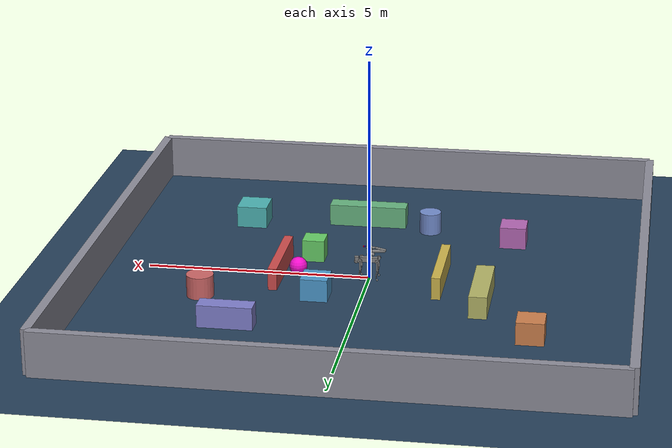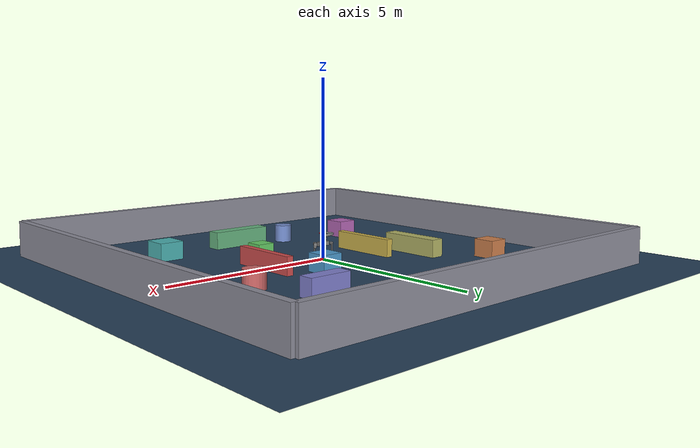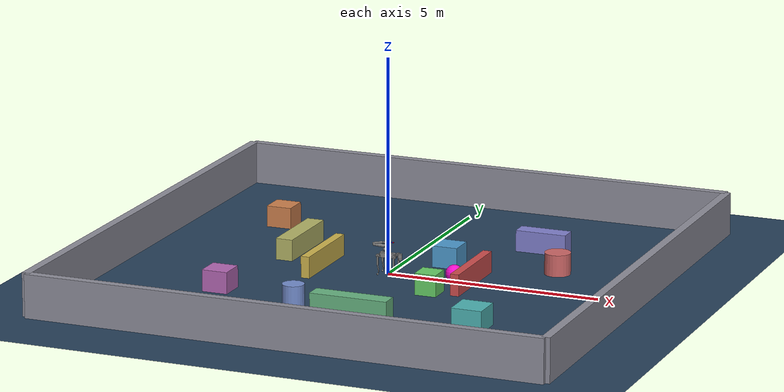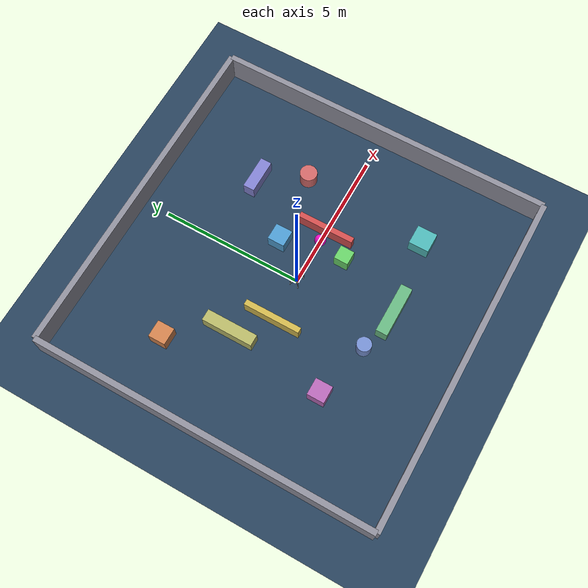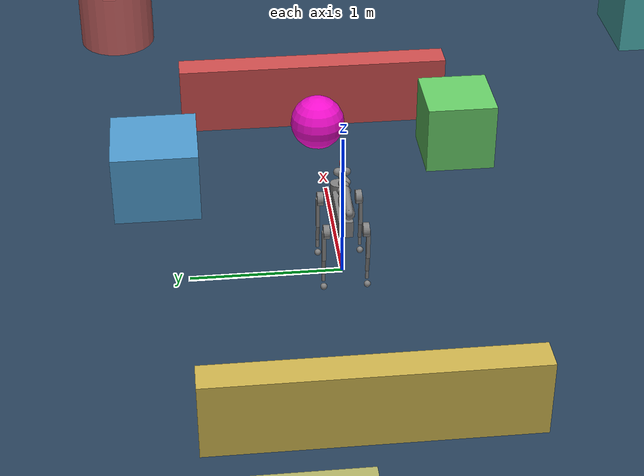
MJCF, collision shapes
<mujoco model="go2_piper_control">
  <compiler angle="radian" meshdir="assets/" texturedir="assets/"/>

  <option impratio="100" cone="elliptic"/>

  <size nkey="1"/>

  <visual>
    <global azimuth="-130" elevation="-20"/>
    <headlight ambient="0.3 0.3 0.3" diffuse="0.6 0.6 0.6" specular="0 0 0"/>
    <rgba haze="0.15 0.25 0.35 1"/>
  </visual>

  <statistic extent="0.8" center="0 0 0.1"/>

  <default>
    <default class="go2">
      <joint armature="0.01" damping="2" frictionloss="0.2"/>
      <geom condim="1" friction="0.6" margin="0.001"/>
      <general ctrlrange="-23.7 23.7"/>
      <default class="abduction">
        <joint range="-1.0472 1.0472"/>
      </default>
      <default class="hip">
        <default class="front_hip">
          <joint range="-1.5708 3.4907"/>
        </default>
        <default class="back_hip">
          <joint range="-0.5236 4.5379"/>
        </default>
      </default>
      <default class="knee">
        <joint range="-2.7227 -0.83776"/>
        <general ctrlrange="-45.43 45.43"/>
      </default>
      <default class="visual">
        <geom type="mesh" contype="0" conaffinity="0" group="2"/>
      </default>
      <default class="collision">
        <geom group="3"/>
        <default class="foot">
          <geom size="0.022 0 0" condim="6" priority="1" friction="0.8 0.02 0.01" solimp="0.015 1 0.022"/>
        </default>
      </default>
    </default>
    <default class="piper_main">
      <default class="piper_piper">
        <joint armature="0.005" frictionloss="0.3"/>
        <general forcerange="-100 100" biastype="affine" biasprm="0 -1"/>
        <default class="piper_finger">
          <joint type="slide" frictionloss="0"/>
          <general forcerange="-10 10"/>
        </default>
        <default class="piper_visual">
          <geom type="mesh" contype="0" conaffinity="0" group="2" density="0"/>
        </default>
        <default class="piper_collision">
          <geom type="capsule" group="3"/>
        </default>
      </default>
    </default>
  </default>

  <asset>
    <texture type="skybox" colorspace="auto" builtin="gradient" rgb1="0.3 0.5 0.7" rgb2="0 0 0" width="512" height="3072"/>
    <texture type="2d" colorspace="auto" name="groundplane" builtin="checker" mark="edge" rgb1="0.2 0.3 0.4" rgb2="0.1 0.2 0.3" markrgb="0.8 0.8 0.8" width="300" height="300"/>
    <texture type="2d" colorspace="linear" name="ball_tex" file="soccer.png"/>
    <material name="metal" rgba="0.9 0.95 0.95 1"/>
    <material name="black" rgba="0 0 0 1"/>
    <material name="white"/>
    <material name="gray" rgba="0.671705 0.692426 0.77427 1"/>
    <material name="groundplane" texture="groundplane" texuniform="true" texrepeat="5 5" reflectance="0.2"/>
    <material name="ball_mat" texture="ball_tex"/>
    <material name="piper_gray_mat" rgba="0.59 0.59 0.59 1"/>
    <material name="piper_light_gray_mat" rgba="0.98 0.98 0.98 1"/>
    <material name="piper_light_medium_gray_mat" rgba="0.85 0.85 0.85 1"/>
    <material name="piper_dark_gray_mat" rgba="0.086 0.086 0.086 1"/>
    <material name="piper_darker_gray_mat" rgba="0.14 0.14 0.14 1"/>
    <material name="piper_white_mat"/>
    <material name="piper_red_mat" rgba="0.82 0.15 0.15 1"/>
    <material name="piper_black_mat" rgba="0 0 0 1"/>
    <material name="piper_light_blue" rgba="0.79 0.82 0.93 1"/>
    <mesh name="base_0" file="base_0.obj"/>
    <mesh name="base_1" file="base_1.obj"/>
    <mesh name="base_2" file="base_2.obj"/>
    <mesh name="base_3" file="base_3.obj"/>
    <mesh name="base_4" file="base_4.obj"/>
    <mesh name="hip_0" file="hip_0.obj"/>
    <mesh name="hip_1" file="hip_1.obj"/>
    <mesh name="thigh_0" file="thigh_0.obj"/>
    <mesh name="thigh_1" file="thigh_1.obj"/>
    <mesh name="thigh_mirror_0" file="thigh_mirror_0.obj"/>
    <mesh name="thigh_mirror_1" file="thigh_mirror_1.obj"/>
    <mesh name="calf_0" file="calf_0.obj"/>
    <mesh name="calf_1" file="calf_1.obj"/>
    <mesh name="calf_mirror_0" file="calf_mirror_0.obj"/>
    <mesh name="calf_mirror_1" file="calf_mirror_1.obj"/>
    <mesh name="foot" file="foot.obj"/>
    <mesh name="piper_link2_0" file="link2_0.obj"/>
    <mesh name="piper_link2_1" file="link2_1.obj"/>
    <mesh name="piper_link2_2" file="link2_2.obj"/>
    <mesh name="piper_link2_3" file="link2_3.obj"/>
    <mesh name="piper_link2_4" file="link2_4.obj"/>
    <mesh name="piper_link2_5" file="link2_5.obj"/>
    <mesh name="piper_link2_6" file="link2_6.obj"/>
    <mesh name="piper_link2_7" file="link2_7.obj"/>
    <mesh name="piper_link2_8" file="link2_8.obj"/>
    <mesh name="piper_link2_9" file="link2_9.obj"/>
    <mesh name="piper_link2_10" file="link2_10.obj"/>
    <mesh name="piper_link2_11" file="link2_11.obj"/>
    <mesh name="piper_link2_12" file="link2_12.obj"/>
    <mesh name="piper_link2_13" file="link2_13.obj"/>
    <mesh name="piper_link2_14" file="link2_14.obj"/>
    <mesh name="piper_link2_15" file="link2_15.obj"/>
    <mesh name="piper_link2_16" file="link2_16.obj"/>
    <mesh name="piper_link2_17" file="link2_17.obj"/>
    <mesh name="piper_link2_18" file="link2_18.obj"/>
    <mesh name="piper_link2_19" file="link2_19.obj"/>
    <mesh name="piper_link2_20" file="link2_20.obj"/>
    <mesh name="piper_link2_21" file="link2_21.obj"/>
    <mesh name="piper_link2_22" file="link2_22.obj"/>
    <mesh name="piper_link2_23" file="link2_23.obj"/>
    <mesh name="piper_link2_24" file="link2_24.obj"/>
    <mesh name="piper_link2_25" file="link2_25.obj"/>
    <mesh name="piper_link2_26" file="link2_26.obj"/>
    <mesh name="piper_link2_27" file="link2_27.obj"/>
    <mesh name="piper_link2_28" file="link2_28.obj"/>
    <mesh name="piper_link2_29" file="link2_29.obj"/>
    <mesh name="piper_link2_30" file="link2_30.obj"/>
    <mesh name="piper_link2_31" file="link2_31.obj"/>
    <mesh name="piper_link3_0" file="link3_0.obj"/>
    <mesh name="piper_link3_1" file="link3_1.obj"/>
    <mesh name="piper_link3_2" file="link3_2.obj"/>
    <mesh name="piper_link3_3" file="link3_3.obj"/>
    <mesh name="piper_link3_4" file="link3_4.obj"/>
    <mesh name="piper_link3_5" file="link3_5.obj"/>
    <mesh name="piper_link3_7" file="link3_7.obj"/>
    <mesh name="piper_link3_8" file="link3_8.obj"/>
    <mesh name="piper_link3_9" file="link3_9.obj"/>
    <mesh name="piper_link3_10" file="link3_10.obj"/>
    <mesh name="piper_link3_11" file="link3_11.obj"/>
    <mesh name="piper_link3_12" file="link3_12.obj"/>
    <mesh name="piper_link3_13" file="link3_13.obj"/>
    <mesh name="piper_link3_14" file="link3_14.obj"/>
    <mesh name="piper_link3_15" file="link3_15.obj"/>
    <mesh name="piper_link3_16" file="link3_16.obj"/>
    <mesh name="piper_link3_17" file="link3_17.obj"/>
    <mesh name="piper_link3_18" file="link3_18.obj"/>
    <mesh name="piper_link3_19" file="link3_19.obj"/>
    <mesh name="piper_link3_20" file="link3_20.obj"/>
    <mesh name="piper_link3_21" file="link3_21.obj"/>
    <mesh name="piper_link3_22" file="link3_22.obj"/>
    <mesh name="piper_link3_23" file="link3_23.obj"/>
    <mesh name="piper_link3_24" file="link3_24.obj"/>
    <mesh name="piper_link3_25" file="link3_25.obj"/>
    <mesh name="piper_link3_26" file="link3_26.obj"/>
    <mesh name="piper_link3_27" file="link3_27.obj"/>
    <mesh name="piper_link3_28" file="link3_28.obj"/>
    <mesh name="piper_link4_2" file="link4_2.obj"/>
    <mesh name="piper_link4_3" file="link4_3.obj"/>
    <mesh name="piper_link4_4" file="link4_4.obj"/>
    <mesh name="piper_link4_5" file="link4_5.obj"/>
    <mesh name="piper_link4_6" file="link4_6.obj"/>
    <mesh name="piper_link5_2" file="link5_2.obj"/>
    <mesh name="piper_link5_3" file="link5_3.obj"/>
    <mesh name="piper_link5_4" file="link5_4.obj"/>
    <mesh name="piper_link5_5" file="link5_5.obj"/>
    <mesh name="piper_link5_6" file="link5_6.obj"/>
    <mesh name="piper_link5_7" file="link5_7.obj"/>
    <mesh name="piper_link5_8" file="link5_8.obj"/>
    <mesh name="piper_base_link" file="base_link.stl"/>
    <mesh name="piper_link1" file="link1.stl"/>
    <mesh name="piper_link2" file="link2.stl"/>
    <mesh name="piper_link2_gray" file="link2_gray.stl"/>
    <mesh name="piper_link3" file="link3.stl"/>
    <mesh name="piper_link4" file="link4.stl"/>
    <mesh name="piper_link5" file="link5.stl"/>
    <mesh name="piper_link6" file="link6.stl"/>
    <mesh name="piper_link7" file="link7.stl"/>
    <mesh name="piper_link8" file="link8.stl"/>
  </asset>

  <worldbody>
    <geom name="floor" size="0 0 0.05" type="plane" material="groundplane"/>
    <geom name="wall_px" size="0.1 6 0.5" pos="6 0 0.5" type="box" rgba="0.55 0.55 0.6 1"/>
    <geom name="wall_nx" size="0.1 6 0.5" pos="-6 0 0.5" type="box" rgba="0.55 0.55 0.6 1"/>
    <geom name="wall_py" size="6 0.1 0.5" pos="0 6 0.5" type="box" rgba="0.55 0.55 0.6 1"/>
    <geom name="wall_ny" size="6 0.1 0.5" pos="0 -6 0.5" type="box" rgba="0.55 0.55 0.6 1"/>
    <geom name="obs_front" size="0.1 1 0.25" pos="2 0 0.25" type="box" rgba="0.8 0.3 0.3 1"/>
    <geom name="obs_left" size="0.3 0.3 0.25" pos="1 1.2 0.25" type="box" rgba="0.3 0.6 0.8 1"/>
    <geom name="obs_right" size="0.25 0.25 0.25" pos="1.4 -1 0.25" type="box" rgba="0.4 0.8 0.4 1"/>
    <geom name="obs_back" size="0.1 1 0.25" pos="-1.6 0 0.25" type="box" rgba="0.8 0.7 0.3 1"/>
    <geom name="obs_c1" size="0.3 0.3 0.25" pos="-3 -2.5 0.25" type="box" rgba="0.7 0.4 0.7 1"/>
    <geom name="obs_c2" size="0.35 0.35 0.25" pos="3.2 -3 0.25" type="box" rgba="0.3 0.7 0.7 1"/>
    <geom name="obs_c3" size="0.3 0.3 0.25" pos="-3.8 2.8 0.25" type="box" rgba="0.8 0.5 0.3 1"/>
    <geom name="obs_c4" size="0.6 0.2 0.25" pos="2.6 3 0.25" type="box" rgba="0.5 0.5 0.8 1"/>
    <geom name="obs_c5" size="0.2 0.9 0.25" pos="-2.6 1 0.25" type="box" rgba="0.7 0.7 0.4 1"/>
    <geom name="obs_c6" size="0.9 0.2 0.25" pos="0.5 -3.3 0.25" type="box" rgba="0.4 0.7 0.5 1"/>
    <geom name="obs_c7" size="0.3 0.25" pos="3.5 1.5 0.25" type="cylinder" rgba="0.8 0.4 0.4 1"/>
    <geom name="obs_c8" size="0.25 0.25" pos="-1 -3 0.25" type="cylinder" rgba="0.45 0.55 0.8 1"/>
    <light pos="0 0 1.5" dir="0 0 -1" type="directional"/>
    <body name="base" childclass="go2" pos="0 0 0.445">
      <inertial pos="0.021112 0 -0.005366" quat="-0.000543471 0.713435 -0.00173769 0.700719" mass="6.921" diaginertia="0.107027 0.0980771 0.0244531"/>
      <joint type="free" armature="0" damping="0" frictionloss="0"/>
      <geom class="visual" material="black" mesh="base_0"/>
      <geom class="visual" material="black" mesh="base_1"/>
      <geom class="visual" material="black" mesh="base_2"/>
      <geom class="visual" material="white" mesh="base_3"/>
      <geom class="visual" material="gray" mesh="base_4"/>
      <geom class="collision" size="0.1881 0.04675 0.057" type="box"/>
      <geom class="collision" size="0.05 0.045" pos="0.285 0 0.01" type="cylinder"/>
      <geom class="collision" size="0.047" pos="0.293 0 -0.06"/>
      <site name="imu" pos="-0.02557 0 0.04232"/>
      <site name="lidar" pos="0.05 0 0.12" size="0.01" rgba="1 0 0 0.3"/>
      <camera name="front_camera" pos="0.32 0 0.03" quat="0.606028 0.364321 -0.364321 -0.606028" fovy="58"/>
      <body name="FL_hip" pos="0.1934 0.0465 0">
        <inertial pos="-0.0054 0.00194 -0.000105" quat="0.497014 0.499245 0.505462 0.498237" mass="0.678" diaginertia="0.00088403 0.000596003 0.000479967"/>
        <joint name="FL_hip_joint" class="abduction" pos="0 0 0" axis="1 0 0"/>
        <geom class="visual" material="metal" mesh="hip_0"/>
        <geom class="visual" material="gray" mesh="hip_1"/>
        <geom class="collision" size="0.046 0.02" pos="0 0.08 0" quat="0.707107 0.707107 0 0" type="cylinder"/>
        <body name="FL_thigh" pos="0 0.0955 0">
          <inertial pos="-0.00374 -0.0223 -0.0327" quat="0.829533 0.0847635 -0.0200632 0.551623" mass="1.152" diaginertia="0.00594973 0.00584149 0.000878787"/>
          <joint name="FL_thigh_joint" class="front_hip" pos="0 0 0" axis="0 1 0"/>
          <geom class="visual" material="metal" mesh="thigh_0"/>
          <geom class="visual" material="gray" mesh="thigh_1"/>
          <geom class="collision" size="0.1065 0.01225 0.017" pos="0 0 -0.1065" quat="0.707107 0 0.707107 0" type="box"/>
          <body name="FL_calf" pos="0 0 -0.213">
            <inertial pos="0.00629595 -0.000622121 -0.141417" quat="0.710672 0.00154099 -0.00450087 0.703508" mass="0.241352" diaginertia="0.0014901 0.00146356 5.31397e-05"/>
            <joint name="FL_calf_joint" class="knee" pos="0 0 0" axis="0 1 0"/>
            <geom class="visual" material="gray" mesh="calf_0"/>
            <geom class="visual" material="black" mesh="calf_1"/>
            <geom class="collision" size="0.012 0.06" pos="0.008 0 -0.06" quat="0.994493 0 -0.104807 0" type="cylinder"/>
            <geom class="collision" size="0.011 0.0325" pos="0.02 0 -0.148" quat="0.999688 0 0.0249974 0" type="cylinder"/>
            <geom class="visual" pos="0 0 -0.213" quat="1 0 0 0" material="black" mesh="foot"/>
            <geom name="FL" class="foot" pos="-0.002 0 -0.213"/>
          </body>
        </body>
      </body>
      <body name="FR_hip" pos="0.1934 -0.0465 0">
        <inertial pos="-0.0054 -0.00194 -0.000105" quat="0.498237 0.505462 0.499245 0.497014" mass="0.678" diaginertia="0.00088403 0.000596003 0.000479967"/>
        <joint name="FR_hip_joint" class="abduction" pos="0 0 0" axis="1 0 0"/>
        <geom class="visual" quat="4.63268e-05 1 0 0" material="metal" mesh="hip_0"/>
        <geom class="visual" quat="4.63268e-05 1 0 0" material="gray" mesh="hip_1"/>
        <geom class="collision" size="0.046 0.02" pos="0 -0.08 0" quat="0.707107 0.707107 0 0" type="cylinder"/>
        <body name="FR_thigh" pos="0 -0.0955 0">
          <inertial pos="-0.00374 0.0223 -0.0327" quat="0.551623 -0.0200632 0.0847635 0.829533" mass="1.152" diaginertia="0.00594973 0.00584149 0.000878787"/>
          <joint name="FR_thigh_joint" class="front_hip" pos="0 0 0" axis="0 1 0"/>
          <geom class="visual" material="metal" mesh="thigh_mirror_0"/>
          <geom class="visual" material="gray" mesh="thigh_mirror_1"/>
          <geom class="collision" size="0.1065 0.01225 0.017" pos="0 0 -0.1065" quat="0.707107 0 0.707107 0" type="box"/>
          <body name="FR_calf" pos="0 0 -0.213">
            <inertial pos="0.00629595 0.000622121 -0.141417" quat="0.703508 -0.00450087 0.00154099 0.710672" mass="0.241352" diaginertia="0.0014901 0.00146356 5.31397e-05"/>
            <joint name="FR_calf_joint" class="knee" pos="0 0 0" axis="0 1 0"/>
            <geom class="visual" material="gray" mesh="calf_mirror_0"/>
            <geom class="visual" material="black" mesh="calf_mirror_1"/>
            <geom class="collision" size="0.013 0.06" pos="0.01 0 -0.06" quat="0.995004 0 -0.0998334 0" type="cylinder"/>
            <geom class="collision" size="0.011 0.0325" pos="0.02 0 -0.148" quat="0.999688 0 0.0249974 0" type="cylinder"/>
            <geom class="visual" pos="0 0 -0.213" quat="1 0 0 0" material="black" mesh="foot"/>
            <geom name="FR" class="foot" pos="-0.002 0 -0.213"/>
          </body>
        </body>
      </body>
      <body name="RL_hip" pos="-0.1934 0.0465 0">
        <inertial pos="0.0054 0.00194 -0.000105" quat="0.505462 0.498237 0.497014 0.499245" mass="0.678" diaginertia="0.00088403 0.000596003 0.000479967"/>
        <joint name="RL_hip_joint" class="abduction" pos="0 0 0" axis="1 0 0"/>
        <geom class="visual" quat="4.63268e-05 0 1 0" material="metal" mesh="hip_0"/>
        <geom class="visual" quat="4.63268e-05 0 1 0" material="gray" mesh="hip_1"/>
        <geom class="collision" size="0.046 0.02" pos="0 0.08 0" quat="0.707107 0.707107 0 0" type="cylinder"/>
        <body name="RL_thigh" pos="0 0.0955 0">
          <inertial pos="-0.00374 -0.0223 -0.0327" quat="0.829533 0.0847635 -0.0200632 0.551623" mass="1.152" diaginertia="0.00594973 0.00584149 0.000878787"/>
          <joint name="RL_thigh_joint" class="back_hip" pos="0 0 0" axis="0 1 0"/>
          <geom class="visual" material="metal" mesh="thigh_0"/>
          <geom class="visual" material="gray" mesh="thigh_1"/>
          <geom class="collision" size="0.1065 0.01225 0.017" pos="0 0 -0.1065" quat="0.707107 0 0.707107 0" type="box"/>
          <body name="RL_calf" pos="0 0 -0.213">
            <inertial pos="0.00629595 -0.000622121 -0.141417" quat="0.710672 0.00154099 -0.00450087 0.703508" mass="0.241352" diaginertia="0.0014901 0.00146356 5.31397e-05"/>
            <joint name="RL_calf_joint" class="knee" pos="0 0 0" axis="0 1 0"/>
            <geom class="visual" material="gray" mesh="calf_0"/>
            <geom class="visual" material="black" mesh="calf_1"/>
            <geom class="collision" size="0.013 0.06" pos="0.01 0 -0.06" quat="0.995004 0 -0.0998334 0" type="cylinder"/>
            <geom class="collision" size="0.011 0.0325" pos="0.02 0 -0.148" quat="0.999688 0 0.0249974 0" type="cylinder"/>
            <geom class="visual" pos="0 0 -0.213" quat="1 0 0 0" material="black" mesh="foot"/>
            <geom name="RL" class="foot" pos="-0.002 0 -0.213"/>
          </body>
        </body>
      </body>
      <body name="RR_hip" pos="-0.1934 -0.0465 0">
        <inertial pos="0.0054 -0.00194 -0.000105" quat="0.499245 0.497014 0.498237 0.505462" mass="0.678" diaginertia="0.00088403 0.000596003 0.000479967"/>
        <joint name="RR_hip_joint" class="abduction" pos="0 0 0" axis="1 0 0"/>
        <geom class="visual" quat="2.14617e-09 4.63268e-05 4.63268e-05 -1" material="metal" mesh="hip_0"/>
        <geom class="visual" quat="2.14617e-09 4.63268e-05 4.63268e-05 -1" material="gray" mesh="hip_1"/>
        <geom class="collision" size="0.046 0.02" pos="0 -0.08 0" quat="0.707107 0.707107 0 0" type="cylinder"/>
        <body name="RR_thigh" pos="0 -0.0955 0">
          <inertial pos="-0.00374 0.0223 -0.0327" quat="0.551623 -0.0200632 0.0847635 0.829533" mass="1.152" diaginertia="0.00594973 0.00584149 0.000878787"/>
          <joint name="RR_thigh_joint" class="back_hip" pos="0 0 0" axis="0 1 0"/>
          <geom class="visual" material="metal" mesh="thigh_mirror_0"/>
          <geom class="visual" material="gray" mesh="thigh_mirror_1"/>
          <geom class="collision" size="0.1065 0.01225 0.017" pos="0 0 -0.1065" quat="0.707107 0 0.707107 0" type="box"/>
          <body name="RR_calf" pos="0 0 -0.213">
            <inertial pos="0.00629595 0.000622121 -0.141417" quat="0.703508 -0.00450087 0.00154099 0.710672" mass="0.241352" diaginertia="0.0014901 0.00146356 5.31397e-05"/>
            <joint name="RR_calf_joint" class="knee" pos="0 0 0" axis="0 1 0"/>
            <geom class="visual" material="gray" mesh="calf_mirror_0"/>
            <geom class="visual" material="black" mesh="calf_mirror_1"/>
            <geom class="collision" size="0.013 0.06" pos="0.01 0 -0.06" quat="0.995004 0 -0.0998334 0" type="cylinder"/>
            <geom class="collision" size="0.011 0.0325" pos="0.02 0 -0.148" quat="0.999688 0 0.0249974 0" type="cylinder"/>
            <geom class="visual" pos="0 0 -0.213" quat="1 0 0 0" material="black" mesh="foot"/>
            <geom name="RR" class="foot" pos="-0.002 0 -0.213"/>
          </body>
        </body>
      </body>
      <body name="piper_base_link" childclass="piper_piper" pos="-0.05 0 0.09" gravcomp="1">
        <inertial pos="-0.00979275 1.82906e-06 0.04101" quat="0.692988 -0.137524 -0.137826 0.69416" mass="0.162549" diaginertia="0.000269445 0.000227478 0.000221437"/>
        <geom class="piper_visual" material="piper_gray_mat" mesh="piper_base_link"/>
        <geom class="piper_collision" size="0.0357691 0.024065" pos="-0.0107422 1.86147e-06 0.0395259" quat="0.536726 0.460902 0.460261 0.536334"/>
        <body name="piper_link1" pos="0 0 0.123" quat="0.707105 0 0 -0.707108" gravcomp="1">
          <inertial pos="0.00131676 0.000310289 -0.00922875" quat="0.557105 0.432155 0.377373 0.600388" mass="0.097868" diaginertia="9.25942e-05 8.3083e-05 7.69469e-05"/>
          <joint name="piper_joint1" pos="0 0 0" axis="0 0 1" range="-2.618 2.618"/>
          <geom class="piper_visual" material="piper_gray_mat" mesh="piper_link1"/>
          <geom class="piper_collision" size="0.0271645 0.0182943" pos="0.00101464 -0.000188218 -0.00563398" quat="0.519141 0.484098 0.499512 0.496617"/>
          <body name="piper_link2" quat="0.499998 0.5 -0.500002 -0.5" gravcomp="1">
            <inertial pos="0.148794 -0.00242027 0.00175155" quat="-0.0249063 0.70684 0.00803509 0.706889" mass="0.290889" diaginertia="0.00177549 0.00173142 0.00014552"/>
            <joint name="piper_joint2" pos="0 0 0" axis="0 0 1" range="0 3.14"/>
            <geom class="piper_visual" material="piper_gray_mat" mesh="piper_link2_0"/>
            <geom class="piper_visual" material="piper_darker_gray_mat" mesh="piper_link2_1"/>
            <geom class="piper_visual" material="piper_darker_gray_mat" mesh="piper_link2_2"/>
            <geom class="piper_visual" material="piper_dark_gray_mat" mesh="piper_link2_3"/>
            <geom class="piper_visual" material="piper_dark_gray_mat" mesh="piper_link2_4"/>
            <geom class="piper_visual" material="piper_red_mat" mesh="piper_link2_5"/>
            <geom class="piper_visual" material="piper_dark_gray_mat" mesh="piper_link2_6"/>
            <geom class="piper_visual" material="piper_gray_mat" mesh="piper_link2_7"/>
            <geom class="piper_visual" material="piper_red_mat" mesh="piper_link2_8"/>
            <geom class="piper_visual" material="piper_red_mat" mesh="piper_link2_9"/>
            <geom class="piper_visual" material="piper_gray_mat" mesh="piper_link2_10"/>
            <geom class="piper_visual" material="piper_red_mat" mesh="piper_link2_11"/>
            <geom class="piper_visual" material="piper_red_mat" mesh="piper_link2_12"/>
            <geom class="piper_visual" material="piper_red_mat" mesh="piper_link2_13"/>
            <geom class="piper_visual" material="piper_red_mat" mesh="piper_link2_14"/>
            <geom class="piper_visual" material="piper_red_mat" mesh="piper_link2_15"/>
            <geom class="piper_visual" material="piper_red_mat" mesh="piper_link2_16"/>
            <geom class="piper_visual" material="piper_red_mat" mesh="piper_link2_17"/>
            <geom class="piper_visual" material="piper_red_mat" mesh="piper_link2_18"/>
            <geom class="piper_visual" material="piper_red_mat" mesh="piper_link2_19"/>
            <geom class="piper_visual" material="piper_red_mat" mesh="piper_link2_20"/>
            <geom class="piper_visual" material="piper_gray_mat" mesh="piper_link2_21"/>
            <geom class="piper_visual" material="piper_red_mat" mesh="piper_link2_22"/>
            <geom class="piper_visual" material="piper_red_mat" mesh="piper_link2_23"/>
            <geom class="piper_visual" material="piper_red_mat" mesh="piper_link2_24"/>
            <geom class="piper_visual" material="piper_dark_gray_mat" mesh="piper_link2_25"/>
            <geom class="piper_visual" material="piper_red_mat" mesh="piper_link2_26"/>
            <geom class="piper_visual" material="piper_darker_gray_mat" mesh="piper_link2_27"/>
            <geom class="piper_visual" material="piper_darker_gray_mat" mesh="piper_link2_28"/>
            <geom class="piper_visual" material="piper_darker_gray_mat" mesh="piper_link2_29"/>
            <geom class="piper_visual" material="piper_darker_gray_mat" mesh="piper_link2_30"/>
            <geom class="piper_visual" material="piper_light_medium_gray_mat" mesh="piper_link2_31"/>
            <geom class="piper_collision" size="0.0354545 0.136662" pos="0.152179 -0.00040773 0.000313761" quat="0.486718 0.483816 0.516937 0.511668"/>
            <body name="piper_link3" pos="0.28358 0.028726 0" quat="0.998726 0 0 0.0504536" gravcomp="1">
              <inertial pos="-0.0996835 0.0349477 0.000508026" quat="0.0777021 0.702287 -0.0990541 0.700674" mass="0.290848" diaginertia="0.000241946 0.000222224 0.000100384"/>
              <joint name="piper_joint3" pos="0 0 0" axis="0 0 1" range="-2.697 0"/>
              <geom class="piper_visual" material="piper_darker_gray_mat" mesh="piper_link3_0"/>
              <geom class="piper_visual" material="piper_red_mat" mesh="piper_link3_1"/>
              <geom class="piper_visual" material="piper_gray_mat" mesh="piper_link3_2"/>
              <geom class="piper_visual" material="piper_gray_mat" mesh="piper_link3_3"/>
              <geom class="piper_visual" material="piper_gray_mat" mesh="piper_link3_4"/>
              <geom class="piper_visual" material="piper_gray_mat" mesh="piper_link3_5"/>
              <geom class="piper_visual" material="piper_darker_gray_mat" mesh="piper_link3_7"/>
              <geom class="piper_visual" material="piper_white_mat" mesh="piper_link3_8"/>
              <geom class="piper_visual" material="piper_red_mat" mesh="piper_link3_9"/>
              <geom class="piper_visual" material="piper_white_mat" mesh="piper_link3_10"/>
              <geom class="piper_visual" material="piper_white_mat" mesh="piper_link3_11"/>
              <geom class="piper_visual" material="piper_white_mat" mesh="piper_link3_12"/>
              <geom class="piper_visual" material="piper_white_mat" mesh="piper_link3_13"/>
              <geom class="piper_visual" material="piper_gray_mat" mesh="piper_link3_14"/>
              <geom class="piper_visual" material="piper_gray_mat" mesh="piper_link3_15"/>
              <geom class="piper_visual" material="piper_gray_mat" mesh="piper_link3_16"/>
              <geom class="piper_visual" material="piper_gray_mat" mesh="piper_link3_17"/>
              <geom class="piper_visual" material="piper_gray_mat" mesh="piper_link3_18"/>
              <geom class="piper_visual" material="piper_gray_mat" mesh="piper_link3_19"/>
              <geom class="piper_visual" material="piper_gray_mat" mesh="piper_link3_20"/>
              <geom class="piper_visual" material="piper_gray_mat" mesh="piper_link3_21"/>
              <geom class="piper_visual" material="piper_gray_mat" mesh="piper_link3_22"/>
              <geom class="piper_visual" material="piper_gray_mat" mesh="piper_link3_23"/>
              <geom class="piper_visual" material="piper_gray_mat" mesh="piper_link3_24"/>
              <geom class="piper_visual" material="piper_gray_mat" mesh="piper_link3_25"/>
              <geom class="piper_visual" material="piper_gray_mat" mesh="piper_link3_26"/>
              <geom class="piper_visual" material="piper_gray_mat" mesh="piper_link3_27"/>
              <geom class="piper_visual" material="piper_gray_mat" mesh="piper_link3_28"/>
              <geom class="piper_collision" size="0.0246371 0.102428" pos="-0.0767504 0.02843 0.000535139" quat="0.569519 0.572735 0.410029 0.423674"/>
              <body name="piper_link4" pos="-0.24221 0.068514 0" quat="0.544767 -0.544769 -0.450809 0.450808" gravcomp="1">
                <inertial pos="0.000276465 -0.00102804 -0.00472831" quat="0.492305 0.505285 0.503294 0.499017" mass="0.127087" diaginertia="4.87057e-05 4.10595e-05 3.82001e-05"/>
                <joint name="piper_joint4" pos="0 0 0" axis="0 0 1" range="-1.832 1.832"/>
                <geom class="piper_visual" material="piper_gray_mat" mesh="piper_link4_2"/>
                <geom class="piper_visual" material="piper_darker_gray_mat" mesh="piper_link4_3"/>
                <geom class="piper_visual" material="piper_gray_mat" mesh="piper_link4_4"/>
                <geom class="piper_visual" material="piper_gray_mat" mesh="piper_link4_5"/>
                <geom class="piper_visual" material="piper_gray_mat" mesh="piper_link4_6"/>
                <geom class="piper_collision" size="0.0238936 0.016908" pos="0.000761852 -0.00691041 -0.0082418" quat="0.955364 0.287171 -0.0612394 0.03258"/>
                <body name="piper_link5" quat="0.707105 0.707108 0 0" gravcomp="1">
                  <inertial pos="8.82262e-05 0.0566829 -0.0019612" quat="0.507447 0.490986 0.506887 0.494466" mass="0.144711" diaginertia="0.001 0.001 0.001"/>
                  <joint name="piper_joint5" pos="0 0 0" axis="0 0 1" range="-1.22 1.22"/>
                  <geom class="piper_visual" material="piper_black_mat" mesh="piper_link5_2"/>
                  <geom class="piper_visual" material="piper_black_mat" mesh="piper_link5_3"/>
                  <geom class="piper_visual" material="piper_darker_gray_mat" mesh="piper_link5_4"/>
                  <geom class="piper_visual" material="piper_gray_mat" mesh="piper_link5_5"/>
                  <geom class="piper_visual" material="piper_light_gray_mat" mesh="piper_link5_6"/>
                  <geom class="piper_visual" material="piper_gray_mat" mesh="piper_link5_7"/>
                  <geom class="piper_visual" material="piper_gray_mat" mesh="piper_link5_8"/>
                  <geom class="piper_collision" size="0.0224253 0.0337559" pos="0.000165456 0.0435329 -0.00463601" quat="0.351922 0.544329 -0.638336 0.415191"/>
                  <body name="piper_link6" pos="0 0.091 0.0014165" quat="0 0 -0.707105 -0.707108" gravcomp="1">
                    <inertial pos="0.0010312 0.0121761 0.0315481" quat="0.0230402 0.707091 0.0373344 0.70576" mass="1.2" diaginertia="0.001 0.001 0.001"/>
                    <joint name="piper_joint6" pos="0 0 0" axis="0 0 1" range="-3.14 3.14"/>
                    <geom class="piper_visual" quat="0.707105 0 0 0.707108" material="piper_gray_mat" mesh="piper_link6"/>
                    <geom class="piper_collision" size="0.0264136 0.0296273" pos="-0.000316499 -5.15037e-08 0.0332864" quat="0.00759712 -0.00727331 0.707074 0.707062"/>
                    <body name="piper_link7" pos="0 0 0.13503" quat="1.89468e-08 1.89469e-08 0.707108 0.707105" gravcomp="1">
                      <inertial pos="-0.000277778 -0.0467673 -0.00921029" quat="0.46134 0.536174 -0.553273 0.439968" mass="0.0264823" diaginertia="0.001 0.001 0.001"/>
                      <joint name="piper_joint7" class="piper_finger" pos="0 0 0" axis="0 0 -1" range="0 0.035"/>
                      <geom class="piper_visual" material="piper_gray_mat" mesh="piper_link7"/>
                      <geom class="piper_collision" size="0.012 0.015 0.0025" pos="0 -0.015 -0.0025" type="box" rgba="1 0 0 0.2"/>
                      <geom class="piper_collision" size="0.015 0.015 0.0025" pos="0 -0.045 -0.0025" type="box" rgba="0 0 1 0.2"/>
                    </body>
                    <body name="piper_link8" pos="0 0 0.13503" quat="1.89468e-08 -1.89469e-08 -0.707108 0.707105" gravcomp="1">
                      <inertial pos="0.000277817 0.0467674 -0.0092103" quat="0.553273 0.439968 -0.46134 0.536174" mass="0.0264822" diaginertia="0.001 0.001 0.001"/>
                      <joint name="piper_joint8" class="piper_finger" pos="0 0 0" axis="0 0 1" range="-0.035 0"/>
                      <geom class="piper_visual" material="piper_gray_mat" mesh="piper_link8"/>
                      <geom class="piper_collision" size="0.012 0.015 0.0025" pos="0 0.015 -0.0025" type="box" rgba="1 0 0 0.2"/>
                      <geom class="piper_collision" size="0.015 0.015 0.0025" pos="0 0.045 -0.0025" type="box" rgba="0 0 1 0.2"/>
                    </body>
                  </body>
                </body>
              </body>
            </body>
          </body>
        </body>
      </body>
    </body>
    <body name="sports_ball" pos="1.6 0 0.2">
      <joint name="ball_free" type="free"/>
      <geom name="sports_ball" size="0.2" condim="6" friction="1 0.01 0.005" mass="0.43" rgba="0.95 0.05 0.8 1"/>
    </body>
  </worldbody>

  <contact>
    <exclude body1="piper_base_link" body2="piper_link1"/>
  </contact>

  <equality>
    <joint joint1="piper_joint8" joint2="piper_joint7" polycoef="0 -1 0 0 0"/>
  </equality>

  <actuator>
    <general name="FL_hip" class="abduction" joint="FL_hip_joint"/>
    <general name="FL_thigh" class="hip" joint="FL_thigh_joint"/>
    <general name="FL_calf" class="knee" joint="FL_calf_joint"/>
    <general name="FR_hip" class="abduction" joint="FR_hip_joint"/>
    <general name="FR_thigh" class="hip" joint="FR_thigh_joint"/>
    <general name="FR_calf" class="knee" joint="FR_calf_joint"/>
    <general name="RL_hip" class="abduction" joint="RL_hip_joint"/>
    <general name="RL_thigh" class="hip" joint="RL_thigh_joint"/>
    <general name="RL_calf" class="knee" joint="RL_calf_joint"/>
    <general name="RR_hip" class="abduction" joint="RR_hip_joint"/>
    <general name="RR_thigh" class="hip" joint="RR_thigh_joint"/>
    <general name="RR_calf" class="knee" joint="RR_calf_joint"/>
    <general name="piper_joint1" class="piper_piper" joint="piper_joint1" ctrlrange="-2.618 2.618" gainprm="80" biasprm="0 -80 -5"/>
    <general name="piper_joint2" class="piper_piper" joint="piper_joint2" ctrlrange="0 3.14" gainprm="80" biasprm="0 -80 -5"/>
    <general name="piper_joint3" class="piper_piper" joint="piper_joint3" ctrlrange="-2.697 0" gainprm="80" biasprm="0 -80 -5"/>
    <general name="piper_joint4" class="piper_piper" joint="piper_joint4" ctrlrange="-1.832 1.832" gainprm="40" biasprm="0 -40 -5"/>
    <general name="piper_joint5" class="piper_piper" joint="piper_joint5" ctrlrange="-1.22 1.22" gainprm="10" biasprm="0 -10 -1.5"/>
    <general name="piper_joint6" class="piper_piper" joint="piper_joint6" ctrlrange="-3.14 3.14" gainprm="10" biasprm="0 -10 -1.5"/>
    <general name="piper_gripper" class="piper_finger" joint="piper_joint7" ctrlrange="0 0.035" gainprm="40" biasprm="0 -40 -5"/>
  </actuator>

  <sensor>
    <framequat objtype="site" objname="imu" name="imu_quat"/>
    <gyro site="imu" name="imu_gyro"/>
    <accelerometer site="imu" name="imu_acc"/>
  </sensor>

  <keyframe>
    <key name="home" qpos="0 0 0.27 1 0 0 0 0 0.9 -1.8 0 0.9 -1.8 0 0.9 -1.8 0 0.9 -1.8 0 1.57 -1.3485 0 0 0 0 0 1.6 0 0.2 1 0 0 0" ctrl="0 0.9 -1.8 0 0.9 -1.8 0 0.9 -1.8 0 0.9 -1.8 0 1.57 -1.3485 0 0 0 0"/>
  </keyframe>
</mujoco>
